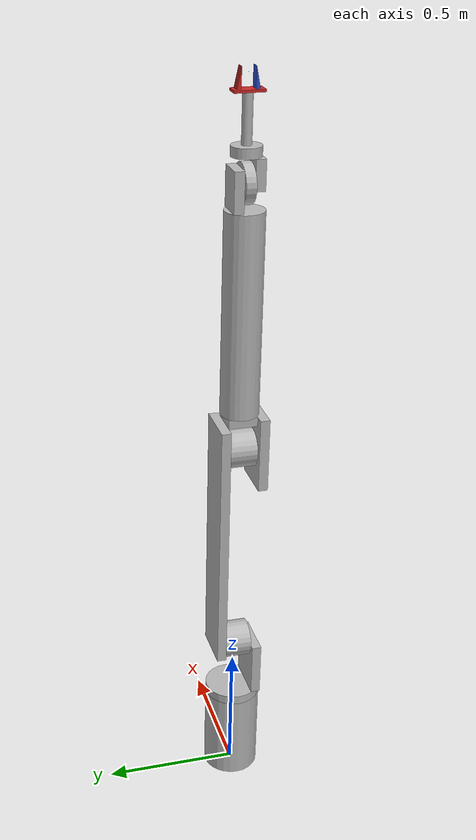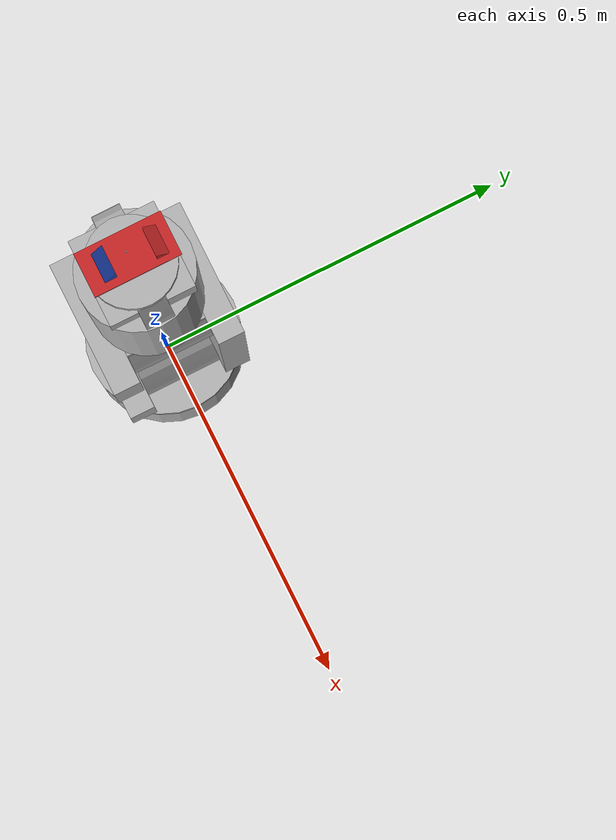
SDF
<?xml version="1.0" encoding="UTF-8"?>
<sdf version="1.4">
  <model name="6axistest">
    <link name="base">
      <pose>0.000000 0.000000 0.175439 0.000000 0.000000 0.000000</pose>
         <inertial>
            <mass>2000</mass>
            <inertia>
               <ixx>2600</ixx>
               <ixy>0.0</ixy>
               <iyy>2600</iyy>
               <ixz>0.0</ixz>
               <iyz>0.0</iyz>
               <izz>4000</izz>
            </inertia>
         </inertial>
      <collision name="Base_collision">
        <geometry>
          <cylinder>
            <radius>0.105263 </radius>
            <length>0.350877</length>
          </cylinder>
        </geometry>
        <surface>
          <friction>
            <ode>
              <mu>100</mu>
              <mu2>50</mu2>
            </ode>
          </friction>
        </surface>
      </collision>
      <visual name="Base_visual">
        <geometry>
          <cylinder>
            <radius>0.105263 </radius>
            <length>0.350877</length>
          </cylinder>
        </geometry>
      </visual>
    </link>
    <!--joint_base_1-->
    <joint name="joint1" type="revolute">
      <pose>0.000000 0.000000 -0.017544 0.000000 0.000000 0.000000</pose>
      <child>link1_1</child>
      <parent>base</parent>
      <axis>
        <dynamics>
          <friction>500</friction>
        </dynamics>
        <xyz>0 0 1</xyz>
      </axis>
    </joint>
    <link name="link1_1">
      <pose>0.000000 0.000000 0.368421 0.000000 0.000000 0.000000</pose>
         <inertial>
            <mass>1.5</mass>
            <inertia>
               <ixx>2.0</ixx>
               <ixy>0.0</ixy>
               <iyy>2.0</iyy>
               <ixz>0.0</ixz>
               <iyz>0.0</iyz>
               <izz>3.0</izz>
            </inertia>
         </inertial>
      <collision name="Base_collision">
        <geometry>
          <cylinder>
            <radius>0.105263 </radius>
            <length>0.035088</length>
          </cylinder>
        </geometry>
        <surface>
          <friction>
            <ode>
              <mu>0</mu>
              <mu2>0</mu2>
            </ode>
          </friction>
        </surface>
      </collision>
      <visual name="Base_visual">
        <geometry>
          <cylinder>
            <radius>0.105263 </radius>
            <length>0.035088</length>
          </cylinder>
        </geometry>
      </visual>
    </link>
    <joint name="link1_2_to_link1_1" type="revolute">
      <pose>0.000000 0.000000 -0.105263 0.000000 0.000000 0.000000</pose>
      <child>link1_2</child>
      <parent>link1_1</parent>
      <axis>
        <limit>
          <lower>0</lower>
          <upper>0</upper>
        </limit>
        <xyz>0 0 1</xyz>
      </axis>
    </joint>
    <link name="link1_2">
      <pose>0.000000 -0.070175 0.491228 0.000000 0.000000 0.000000</pose>
         <inertial>
            <mass>.9</mass>
            <inertia>
               <ixx>4.65</ixx>
               <ixy>0.0</ixy>
               <iyy>2.7</iyy>
               <ixz>0.0</ixz>
               <iyz>0.0</iyz>
               <izz>1.8</izz>
            </inertia>
         </inertial>
      <collision name="Base_collision">
        <geometry>
          <box>
            <size>0.175439 0.035088 0.210526</size>
          </box>
        </geometry>
        <surface>
          <friction>
            <ode>
              <mu>0</mu>
              <mu2>0</mu2>
            </ode>
          </friction>
        </surface>
      </collision>
      <visual name="Base_visual">
        <geometry>
          <box>
            <size>0.175439 0.035088 0.210526</size>
          </box>
        </geometry>
      </visual>
    </link>
    <!--joint_1_2-->
    <joint name="joint2" type="revolute">
      <pose>0.000000 0.000000 0.052632 0.000000 0.000000 0.000000</pose>
      <child>link2_1</child>
      <parent>link1_2</parent>
      <axis>
        <dynamics>
          <friction>50000</friction>
        </dynamics>
        <xyz>0 1 0</xyz>
      </axis>
    </joint>
    <link name="link2_1">
      <pose>0.000000 0.000000 0.596491 1.570800 0.000000 0.000000</pose>
         <inertial>
            <mass>1.5</mass>
            <inertia>
               <ixx>2.0</ixx>
               <ixy>0.0</ixy>
               <iyy>2.0</iyy>
               <ixz>0.0</ixz>
               <iyz>0.0</iyz>
               <izz>3.0</izz>
            </inertia>
         </inertial>
      <collision name="Base_collision">
        <geometry>
          <cylinder>
            <radius>0.070175 </radius>
            <length>0.105263</length>
          </cylinder>
        </geometry>
        <surface>
          <friction>
            <ode>
              <mu>0</mu>
              <mu2>0</mu2>
            </ode>
          </friction>
        </surface>
      </collision>
      <visual name="Base_visual">
        <geometry>
          <cylinder>
            <radius>0.070175 </radius>
            <length>0.105263</length>
          </cylinder>
        </geometry>
      </visual>
    </link>
    <joint name="link2_1_to_link2_2" type="revolute">
      <pose>0.000000 0.000000 -0.052632 0.000000 0.000000 0.000000</pose>
      <child>link2_1</child>
      <parent>link2_2</parent>
      <axis>
        <limit>
          <lower>0</lower>
          <upper>0</upper>
        </limit>
        <xyz>0 0 1</xyz>
      </axis>
    </joint>
    <link name="link2_2">
      <pose>0.000000 0.070175 1.052632 0.000000 0.000000 0.000000</pose>
         <inertial>
            <mass>.9</mass>
            <inertia>
               <ixx>4.65</ixx>
               <ixy>0.0</ixy>
               <iyy>2.7</iyy>
               <ixz>0.0</ixz>
               <iyz>0.0</iyz>
               <izz>1.8</izz>
            </inertia>
         </inertial>
      <collision name="Base_collision">
        <geometry>
          <box>
            <size>0.175439 0.035088 0.982456</size>
          </box>
        </geometry>
        <surface>
          <friction>
            <ode>
              <mu>0</mu>
              <mu2>0</mu2>
            </ode>
          </friction>
        </surface>
      </collision>
      <visual name="Base_visual">
        <geometry>
          <box>
            <size>0.175439 0.035088 0.982456</size>
          </box>
        </geometry>
      </visual>
    </link>
    <!--joint_2_3-->
    <joint name="joint3" type="revolute">
      <pose>0.000000 0.000000 -0.052632 0.000000 0.000000 0.000000</pose>
      <child>link3_1</child>
      <parent>link2_2</parent>
      <axis>
        <dynamics>
          <friction>50000</friction>
        </dynamics>
        <xyz>0 1 0</xyz>
      </axis>
    </joint>
    <link name="link3_1">
      <pose>0.000000 0.000000 1.438596 1.570800 0.000000 0.000000</pose>
         <inertial>
            <mass>1.5</mass>
            <inertia>
               <ixx>2.0</ixx>
               <ixy>0.0</ixy>
               <iyy>2.0</iyy>
               <ixz>0.0</ixz>
               <iyz>0.0</iyz>
               <izz>3.0</izz>
            </inertia>
         </inertial>
      <collision name="Base_collision">
        <geometry>
          <cylinder>
            <radius>0.070175 </radius>
            <length>0.105263</length>
          </cylinder>
        </geometry>
        <surface>
          <friction>
            <ode>
              <mu>0</mu>
              <mu2>0</mu2>
            </ode>
          </friction>
        </surface>
      </collision>
      <visual name="Base_visual">
        <geometry>
          <cylinder>
            <radius>0.070175 </radius>
            <length>0.105263</length>
          </cylinder>
        </geometry>
      </visual>
    </link>
    <joint name="link3_1_to_link3_2" type="revolute">
      <pose>0.000000 0.000000 0.052632 0.000000 0.000000 0.000000</pose>
      <child>link3_1</child>
      <parent>link3_2</parent>
      <axis>
        <limit>
          <lower>0</lower>
          <upper>0</upper>
        </limit>
        <xyz>0 0 1</xyz>
      </axis>
    </joint>
    <link name="link3_2">
      <pose>0.000000 -0.070175 1.438596 0.000000 0.000000 0.000000</pose>
         <inertial>
            <mass>.9</mass>
            <inertia>
               <ixx>4.65</ixx>
               <ixy>0.0</ixy>
               <iyy>2.7</iyy>
               <ixz>0.0</ixz>
               <iyz>0.0</iyz>
               <izz>1.8</izz>
            </inertia>
         </inertial>
      <collision name="Base_collision">
        <geometry>
          <box>
            <size>0.175439 0.035088 0.280702</size>
          </box>
        </geometry>
        <surface>
          <friction>
            <ode>
              <mu>0</mu>
              <mu2>0</mu2>
            </ode>
          </friction>
        </surface>
      </collision>
      <visual name="Base_visual">
        <geometry>
          <box>
            <size>0.175439 0.035088 0.280702</size>
          </box>
        </geometry>
      </visual>
    </link>
    <joint name="link3_3_to_link3_2" type="revolute">
      <pose>0.000000 -0.052632 0.000000 0.000000 0.000000 0.000000</pose>
      <child>link3_3</child>
      <parent>link3_2</parent>
      <axis>
        <limit>
          <lower>0</lower>
          <upper>0</upper>
        </limit>
        <xyz>0 0 1</xyz>
      </axis>
    </joint>
    <link name="link3_3">
      <pose>0.000000 0.000000 1.561404 0.000000 0.000000 0.000000</pose>
         <inertial>
            <mass>.9</mass>
            <inertia>
               <ixx>4.65</ixx>
               <ixy>0.0</ixy>
               <iyy>2.7</iyy>
               <ixz>0.0</ixz>
               <iyz>0.0</iyz>
               <izz>1.8</izz>
            </inertia>
         </inertial>
      <collision name="Base_collision">
        <geometry>
          <box>
            <size>0.105263 0.105263 0.035088</size>
          </box>
        </geometry>
        <surface>
          <friction>
            <ode>
              <mu>0</mu>
              <mu2>0</mu2>
            </ode>
          </friction>
        </surface>
      </collision>
      <visual name="Base_visual">
        <geometry>
          <box>
            <size>0.105263 0.105263 0.035088</size>
          </box>
        </geometry>
      </visual>
    </link>
    <!--joint_4_3-->
    <joint name="joint4" type="revolute">
      <pose>0.000000 0.000000 -0.368421 0.000000 0.000000 0.000000</pose>
      <child>link4_1</child>
      <parent>link3_3</parent>
      <axis>
        <xyz>0  0 1</xyz>
      </axis>
    </joint>
    <link name="link4_1">
      <pose>0.000000 0.000000 1.947368 0.000000 0.000000 0.000000</pose>
         <inertial>
            <mass>1.5</mass>
            <inertia>
               <ixx>2.0</ixx>
               <ixy>0.0</ixy>
               <iyy>2.0</iyy>
               <ixz>0.0</ixz>
               <iyz>0.0</iyz>
               <izz>3.0</izz>
            </inertia>
         </inertial>
      <collision name="Base_collision">
        <geometry>
          <cylinder>
            <radius>0.070175 </radius>
            <length>0.736842</length>
          </cylinder>
        </geometry>
        <surface>
          <friction>
            <ode>
              <mu>0</mu>
              <mu2>0</mu2>
            </ode>
          </friction>
        </surface>
      </collision>
      <visual name="Base_visual">
        <geometry>
          <cylinder>
            <radius>0.070175 </radius>
            <length>0.736842</length>
          </cylinder>
        </geometry>
      </visual>
    </link>
    <joint name="link4_1_to_link4_2" type="revolute">
      <pose>0.000000 0.000000 -0.070175 0.000000 0.000000 0.000000</pose>
      <child>link4_2</child>
      <parent>link4_1</parent>
      <axis>
        <limit>
          <lower>0</lower>
          <upper>0</upper>
        </limit>
        <xyz>0 0 1</xyz>
      </axis>
    </joint>
    <link name="link4_2">
      <pose>0.000000 0.035088 2.385965 0.000000 0.000000 0.000000</pose>
         <inertial>
            <mass>.9</mass>
            <inertia>
               <ixx>4.65</ixx>
               <ixy>0.0</ixy>
               <iyy>2.7</iyy>
               <ixz>0.0</ixz>
               <iyz>0.0</iyz>
               <izz>1.8</izz>
            </inertia>
         </inertial>
      <collision name="Base_collision">
        <geometry>
          <box>
            <size>0.105263 0.035088 0.140351</size>
          </box>
        </geometry>
        <surface>
          <friction>
            <ode>
              <mu>0</mu>
              <mu2>0</mu2>
            </ode>
          </friction>
        </surface>
      </collision>
      <visual name="Base_visual">
        <geometry>
          <box>
            <size>0.105263 0.035088 0.140351</size>
          </box>
        </geometry>
      </visual>
    </link>
    <!--joint_4_5-->
    <joint name="joint5" type="revolute">
      <pose>0.000000 0.000000 -0.017544 0.000000 0.000000 0.000000</pose>
      <child>link5_1</child>
      <parent>link4_2</parent>
      <axis>
        <dynamics>
          <friction>50000</friction>
        </dynamics>
        <xyz>0 1 0</xyz>
      </axis>
    </joint>
    <link name="link5_1">
      <pose>0.000000 0.000000 2.403509 1.570800 0.000000 0.000000</pose>
         <inertial>
            <mass>1.5</mass>
            <inertia>
               <ixx>2.0</ixx>
               <ixy>0.0</ixy>
               <iyy>2.0</iyy>
               <ixz>0.0</ixz>
               <iyz>0.0</iyz>
               <izz>3.0</izz>
            </inertia>
         </inertial>
      <collision name="Base_collision">
        <geometry>
          <cylinder>
            <radius>0.070175 </radius>
            <length>0.035088</length>
          </cylinder>
        </geometry>
        <surface>
          <friction>
            <ode>
              <mu>0</mu>
              <mu2>0</mu2>
            </ode>
          </friction>
        </surface>
      </collision>
      <visual name="Base_visual">
        <geometry>
          <cylinder>
            <radius>0.070175 </radius>
            <length>0.035088</length>
          </cylinder>
        </geometry>
      </visual>
    </link>
    <joint name="link5_2_to_link5_1" type="revolute">
      <pose>0.000000 0.000000 0.017544 0.000000 0.000000 0.000000</pose>
      <child>link5_1</child>
      <parent>link5_2</parent>
      <axis>
        <limit>
          <lower>0</lower>
          <upper>0</upper>
        </limit>
        <xyz>0 0 1</xyz>
      </axis>
    </joint>
    <link name="link5_2">
      <pose>0.000000 -0.035088 2.438596 0.000000 0.000000 0.000000</pose>
         <inertial>
            <mass>.9</mass>
            <inertia>
               <ixx>4.65</ixx>
               <ixy>0.0</ixy>
               <iyy>2.7</iyy>
               <ixz>0.0</ixz>
               <iyz>0.0</iyz>
               <izz>1.8</izz>
            </inertia>
         </inertial>
      <collision name="Base_collision">
        <geometry>
          <box>
            <size>0.105263 0.035088 0.105263</size>
          </box>
        </geometry>
        <surface>
          <friction>
            <ode>
              <mu>0</mu>
              <mu2>0</mu2>
            </ode>
          </friction>
        </surface>
      </collision>
      <visual name="Base_visual">
        <geometry>
          <box>
            <size>0.105263 0.035088 0.105263</size>
          </box>
        </geometry>
      </visual>
    </link>
    <joint name="link5_2_to_link5_3" type="revolute">
      <pose>0.000000 0.000000 0.052632 0.000000 0.000000 0.000000</pose>
      <child>link5_2</child>
      <parent>link5_3</parent>
      <axis>
        <limit>
          <lower>0</lower>
          <upper>0</upper>
        </limit>
        <xyz>0 0 1</xyz>
      </axis>
    </joint>
    <link name="link5_3">
      <pose>0.000000 0.000000 2.508772 0.000000 0.000000 0.000000</pose>
         <inertial>
            <mass>1.5</mass>
            <inertia>
               <ixx>2.0</ixx>
               <ixy>0.0</ixy>
               <iyy>2.0</iyy>
               <ixz>0.0</ixz>
               <iyz>0.0</iyz>
               <izz>3.0</izz>
            </inertia>
         </inertial>
      <collision name="Base_collision">
        <geometry>
          <cylinder>
            <radius>0.052632 </radius>
            <length>0.035088</length>
          </cylinder>
        </geometry>
        <surface>
          <friction>
            <ode>
              <mu>0</mu>
              <mu2>0</mu2>
            </ode>
          </friction>
        </surface>
      </collision>
      <visual name="Base_visual">
        <geometry>
          <cylinder>
            <radius>0.052632 </radius>
            <length>0.035088</length>
          </cylinder>
        </geometry>
      </visual>
    </link>
    <!--joint_6_5-->
    <joint name="joint6" type="revolute">
      <pose>0.000000 0.000000 -0.114035 0.000000 0.000000 0.000000</pose>
      <child>link6</child>
      <parent>link5_3</parent>
      <axis>
        <dynamics>
          <friction>50000</friction>
        </dynamics>
        <xyz>0 0 1</xyz>
      </axis>
    </joint>
    <link name="link6">
      <pose>0.000000 0.000000 2.609649 0.000000 0.000000 0.000000</pose>
         <inertial>
            <mass>1.5</mass>
            <inertia>
               <ixx>2.0</ixx>
               <ixy>0.0</ixy>
               <iyy>2.0</iyy>
               <ixz>0.0</ixz>
               <iyz>0.0</iyz>
               <izz>3.0</izz>
            </inertia>
         </inertial>
      <collision name="Base_collision">
        <geometry>
          <cylinder>
            <radius>0.017544 </radius>
            <length>0.166667</length>
          </cylinder>
        </geometry>
        <surface>
          <friction>
            <ode>
              <mu>0</mu>
              <mu2>0</mu2>
            </ode>
          </friction>
        </surface>
      </collision>
      <visual name="Base_visual">
        <geometry>
          <cylinder>
            <radius>0.017544 </radius>
            <length>0.166667</length>
          </cylinder>
        </geometry>
      </visual>
    </link>

 		<include>
		<pose>0.000000 0.000000 2.771930 0.000000 3.141590 0.000000</pose>
			<uri>/home/kevin/research/gazebo/Arm_Control2/model/gripper</uri>
		</include>

    <!--joint_6_gripper-->
    <joint name="joint7" type="revolute">
      <pose>0.000000 0.000000 0.004386 0.000000 0.000000 0.000000</pose>
      <child>gripper::plam</child>
      <parent>link6</parent>
      <axis>
         <xyz>0 0 1</xyz>
         <limit>
          <lower>0</lower>
          <upper>0</upper>
         </limit>
      </axis>
   </joint>
 <plugin name="ccc" filename="/home/kevin/research/gazebo/Arm_Control2/Debug/libArm_Control2.so" />

  </model>
</sdf>

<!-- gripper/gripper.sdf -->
<sdf version="1.4">
   <model name="gripper">
      <link name="plam">
         <pose>0.000000 0.000000 0.074561 0.000000 0.000000 0.000000</pose>
         <inertial>
            <mass>.1</mass>
            <inertia>
               <ixx>0.05</ixx>
               <ixy>0.0</ixy>
               <iyy>0.05</iyy>
               <ixz>0.0</ixz>
               <iyz>0.0</iyz>
               <izz>0.05</izz>
            </inertia>
         </inertial>
         <collision name="collision">
            <surface>
               <friction>
                  <ode>
                     <mu>100000.0</mu>
                     <mu2>100000.0</mu2>
                     <slip1>0.0</slip1>
                     <slip2>0.0</slip2>
                  </ode>
               </friction>
            </surface>
            <geometry>
               <box>
                  <size>0.052632 0.105263 0.008772</size>
               </box>
            </geometry>
         </collision>
         <visual name="visual">
            <geometry>
               <box>
                  <size>0.052632 0.105263 0.008772</size>
               </box>
            </geometry>
            <material>
               <script>
                  <uri>file://media/materials/scripts/gazebo.material</uri>
                  <name>Gazebo/Red</name>
               </script>
            </material>
         </visual>
      </link>

      <link name="right_finger">
         <pose>0.000000 0.029825 0.035088 0.000000 0.000000 0.000000</pose>
         <inertial>
            <mass>.1</mass>
            <inertia>
               <ixx>0.05</ixx>
               <ixy>0.0</ixy>
               <iyy>0.05</iyy>
               <ixz>0.0</ixz>
               <iyz>0.0</iyz>
               <izz>0.05</izz>
            </inertia>
         </inertial>
         <collision name="collision">
            <surface>
               <bounce>
                  <restitution_coefficient>0</restitution_coefficient>
                  <threshold>99999999</threshold>
               </bounce>
               <friction>
                  <ode>
                     <mu>100000.0</mu>
                     <mu2>100000.0</mu2>
                     <slip1>0.0</slip1>
                     <slip2>0.0</slip2>
                  </ode>
               </friction>
            </surface>
            <geometry>
               <mesh>
                  <scale>0.045614 0.035088 0.035088</scale>
                  <uri>/home/kevin/research/gazebo/arm_control_AR605/model/gripper/right_finger.dae</uri>
               </mesh>
            </geometry>
         </collision>
         <visual name="visual">
            <material>
               <script>
                  <uri>file://media/materials/scripts/gazebo.material</uri>
                  <name>Gazebo/Red</name>
               </script>
            </material>
            <geometry>
               <mesh>
                  <scale>0.045614 0.035088 0.035088</scale>
                  <uri>/home/kevin/research/gazebo/arm_control_AR605/model/gripper/right_finger.dae</uri>
               </mesh>
            </geometry>
         </visual>
      </link>

      <link name="left_finger">
         <pose>0.000000 -0.025439 0.035088 0.000000 0.000000 0.000000</pose>
         <inertial>
            <mass>.1</mass>
            <inertia>
               <ixx>0.05</ixx>
               <ixy>0.0</ixy>
               <iyy>0.05</iyy>
               <ixz>0.0</ixz>
               <iyz>0.0</iyz>
               <izz>0.05</izz>
            </inertia>
         </inertial>
         <collision name="collision">
            <surface>
               <bounce>
                  <restitution_coefficient>0</restitution_coefficient>
                  <threshold>99999999</threshold>
               </bounce>
               <friction>
                  <ode>
                     <mu>100000.0</mu>
                     <mu2>100000.0</mu2>
                     <slip1>0.0</slip1>
                     <slip2>0.0</slip2>
                  </ode>
               </friction>
            </surface>
            <geometry>
               <mesh>
                  <scale>0.045614 0.035088 0.035088</scale>
                  <uri>/home/kevin/research/gazebo/arm_control_AR605/model/gripper/left_finger.dae</uri>
               </mesh>
            </geometry>
         </collision>
         <visual name="visual">
            <material>
               <script>
                  <uri>file://media/materials/scripts/gazebo.material</uri>
                  <name>Gazebo/Blue</name>
               </script>
            </material>
            <geometry>
               <mesh>
                  <scale>0.045614 0.035088 0.035088</scale>
                  <uri>/home/kevin/research/gazebo/arm_control_AR605/model/gripper/left_finger.dae</uri>
               </mesh>
            </geometry>
         </visual>
      </link>

      <joint name="right_joint" type="prismatic">
         <pose>0.000000 0.000000 0.035088 0.000000 0.000000 0.000000</pose>
         <child>right_finger</child>
         <parent>plam</parent>
         <axis>
            <dynamics>
               <damping>5</damping>
               <friction>5</friction>
            </dynamics>
            <xyz>0 1 0</xyz>
            <dynamics>
               <damping>5</damping>
               <friction>5</friction>
            </dynamics>
            <limit>
               <lower>-0.0228</lower>
               <upper>0</upper>
            </limit>
         </axis>
      </joint>
      <joint name="left_joint" type="prismatic">
         <pose>0.000000 0.000000 0.035088 0.000000 0.000000 0.000000</pose>
         <child>left_finger</child>
         <parent>plam</parent>
         <axis>
            <dynamics>
               <damping>5</damping>
               <friction>5</friction>
            </dynamics>
            <xyz>0 1 0</xyz>
            <limit>
               <lower>-0.0085</lower>
               <upper>0.0208</upper>
            </limit>
         </axis>
      </joint>

      <joint name="glue" type="revolute">
			<axis>1 0 0</axis>
         <pose>0.000000 0.000000 0.0 0.000000 0.000000 0.000000</pose>
         <child>dummy_for_glue</child>
         <parent>plam</parent>
      </joint>

      <link name="dummy_for_glue">
         <pose>0.000000 0.0 0.02 0.000000 0.000000 0.000000</pose>
 	 <inertial>
            <mass>.0001</mass>
         </inertial>
         <collision name="collision">
            <geometry>
               <sphere>
                  <radius>0.0001</radius>
               </sphere>
            </geometry>
         </collision>

         <visual name="visual">
            <geometry>
               <sphere>
                  <radius>0.001</radius>
               </sphere>
            </geometry>
         </visual>
      </link>

   </model>
</sdf>
